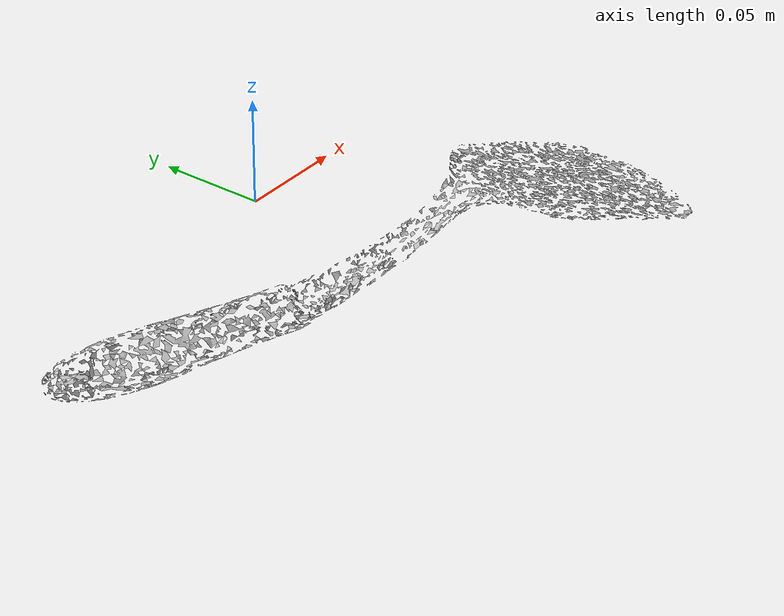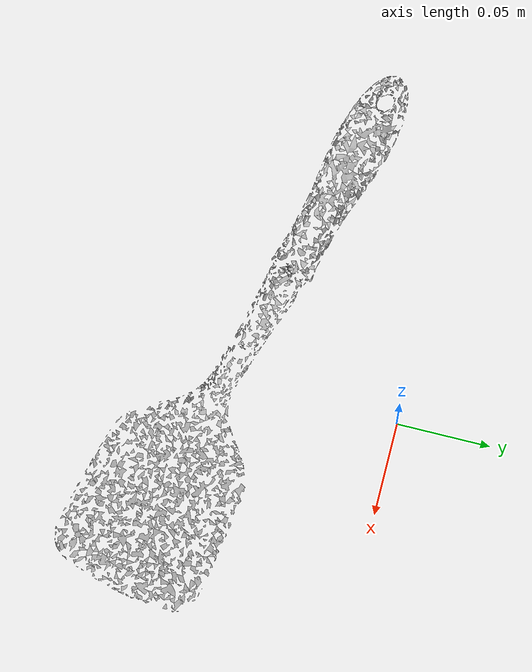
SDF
<?xml version='1.0'?>
<sdf version="1.4">
  <model name="spatula">
    <static>false</static>
    <link name="link">
      <inertial>
        <pose>-0.046581043820340895 -0.07860574843636466 0.013189187861051138 -2.331561210495197 -1.5669207168488426 2.0663800682084794</pose>
        <mass>6.713356277814284e-05</mass>
        <inertia>
          <ixx>6.479497015474891e-07</ixx>
          <ixy>-8.232292304091934e-25</ixy>
          <ixz>-4.203413359169892e-25</ixz>
          <iyy>6.389283657144583e-07</iyy>
          <iyz>5.861407371947937e-25</iyz>
          <izz>1.503831931878906e-08</izz>
        </inertia>
      </inertial>
      <collision name="collision">
        <geometry>
          <mesh>
            <!-- Use a downsampled mesh for collisions -->
            <uri>model://033_spatula/downsampled.obj</uri>
	        </mesh>
        </geometry>
        <surface>
      </surface>
      </collision>
      <visual name="visual">
        <geometry>
          <mesh>
            <uri>model://033_spatula/google_16k/textured.obj</uri>
	        </mesh>
        </geometry>
        <material>
          <script>
            <uri>model://033_spatula/spatula.material</uri>
            <name>spatula</name>
          </script>
        </material>
      </visual>
    </link>
  </model>
</sdf>
